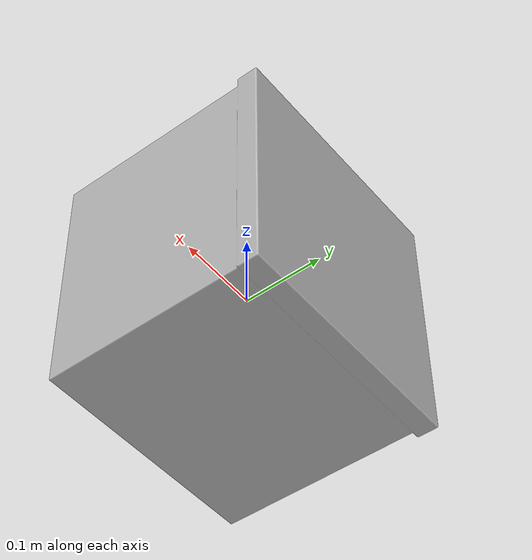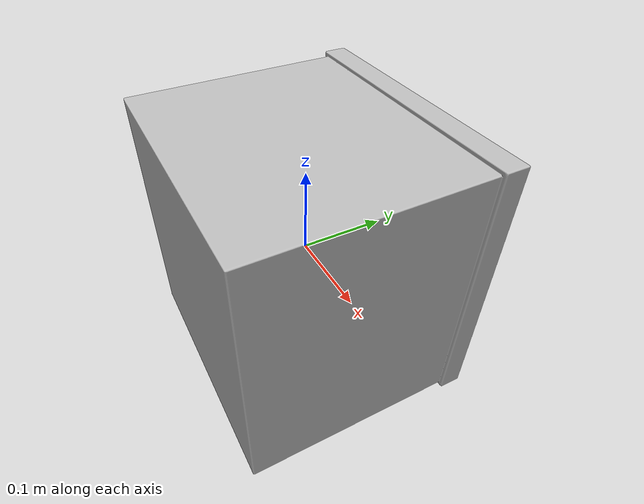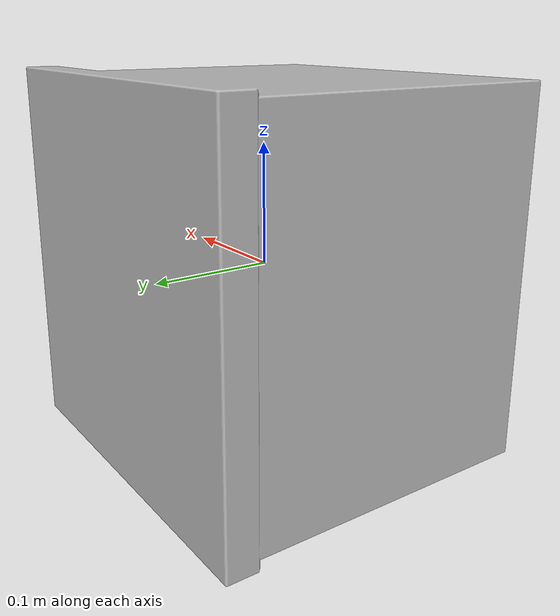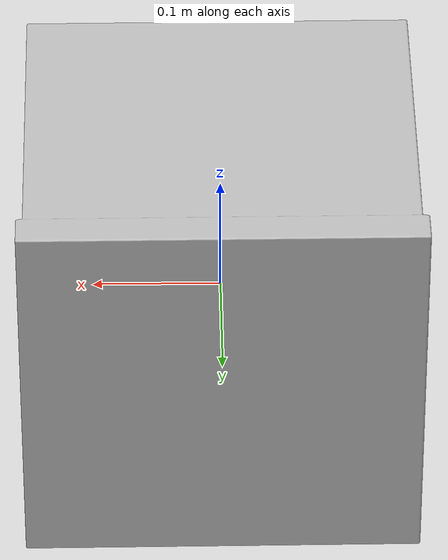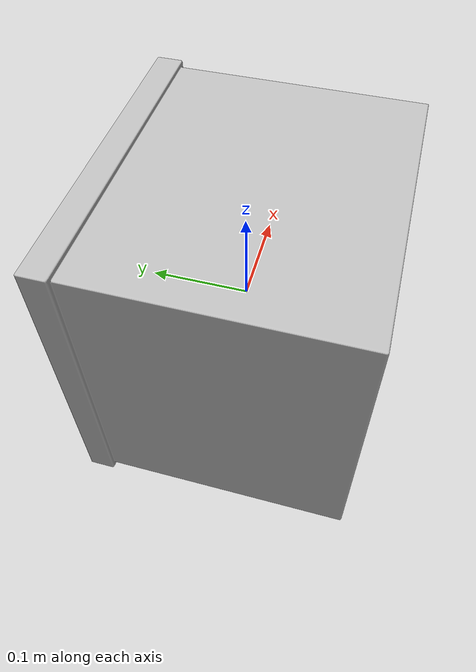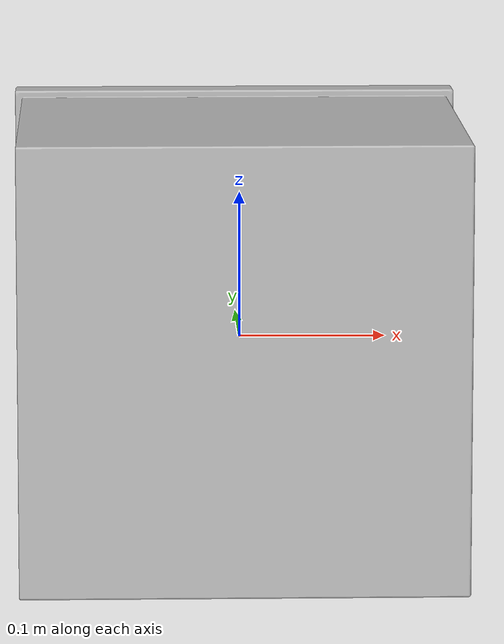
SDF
<?xml version="1.0"?>
<sdf version="1.6">
  <model name="box_green_model">
    <static>false</static>

    <link name="link">
      <pose>0 0 0 0 0 0</pose>

      <visual name="visual">
        <pose>0 0 0 0 0 0</pose>
        <geometry>
          <mesh>
            <uri>model://home/user/xbot2_ws/src/iit-centauro-ros-pkg/centauro_gazebo/models/box_green_model/meshes/green_box.obj</uri>
            <scale>1 1 1</scale>
          </mesh>
        </geometry>
      </visual>

      <collision name="collision">
        <pose>0 0 0 0 0 0</pose>
        <geometry>
          <box>
            <size>0.312 0.276 0.309</size>
          </box>
        </geometry>

        <surface>
          <friction>
            <ode>
              <mu>10.0</mu>
              <mu2>10.0</mu2>
              <slip1>0.0</slip1>
              <slip2>0.0</slip2>
            </ode>
          </friction>
        </surface>
      </collision>

      <inertial>
        <mass>2</mass>
        <inertia>
          <ixx>10000</ixx>
          <iyy>10000</iyy>
          <izz>10000</izz>
          <ixy>0.0</ixy>
          <ixz>0.0</ixz>
          <iyz>0.0</iyz>
        </inertia>
      </inertial>

    </link>
  </model>
</sdf>
